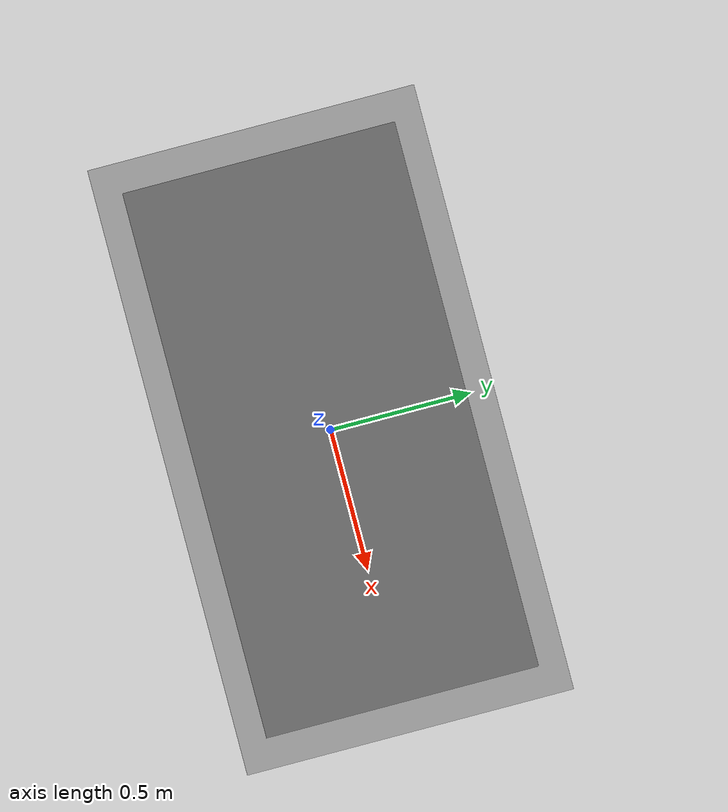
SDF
<?xml version="1.0"?>
<sdf version="1.6">
  <model name="usv_deck">
    <static>true</static>

    <link name="hull">
      <!-- ── Main hull box ─────────────────────────────────────────────── -->
      <collision name="hull_collision">
        <pose>0 0 0.175 0 0 0</pose>
        <geometry>
          <box><size>2.0 1.08 0.35</size></box>
        </geometry>
        <surface>
          <friction>
            <ode><mu>0.6</mu><mu2>0.6</mu2></ode>
          </friction>
        </surface>
      </collision>
      <visual name="hull_visual">
        <pose>0 0 0.175 0 0 0</pose>
        <geometry>
          <box><size>2.0 1.08 0.35</size></box>
        </geometry>
        <material>
          <ambient>0.55 0.55 0.55 1</ambient>
          <diffuse>0.60 0.60 0.60 1</diffuse>
          <specular>0.1 0.1 0.1 1</specular>
        </material>
      </visual>

      <!-- ── Deck surface (slightly darker) ───────────────────────────── -->
      <visual name="deck_visual">
        <pose>0 0 0.352 0 0 0</pose>
        <geometry>
          <box><size>1.8 0.90 0.004</size></box>
        </geometry>
        <material>
          <ambient>0.35 0.35 0.35 1</ambient>
          <diffuse>0.40 0.40 0.40 1</diffuse>
        </material>
      </visual>

      <!-- ── Pontoon markers (for visual depth) ───────────────────────── -->
      <visual name="pontoon_left">
        <pose>0 0.50 0.10 0 0 0</pose>
        <geometry><box><size>2.0 0.05 0.20</size></box></geometry>
        <material>
          <ambient>0.25 0.25 0.25 1</ambient>
          <diffuse>0.30 0.30 0.30 1</diffuse>
        </material>
      </visual>
      <visual name="pontoon_right">
        <pose>0 -0.50 0.10 0 0 0</pose>
        <geometry><box><size>2.0 0.05 0.20</size></box></geometry>
        <material>
          <ambient>0.25 0.25 0.25 1</ambient>
          <diffuse>0.30 0.30 0.30 1</diffuse>
        </material>
      </visual>
    </link>
  </model>
</sdf>
